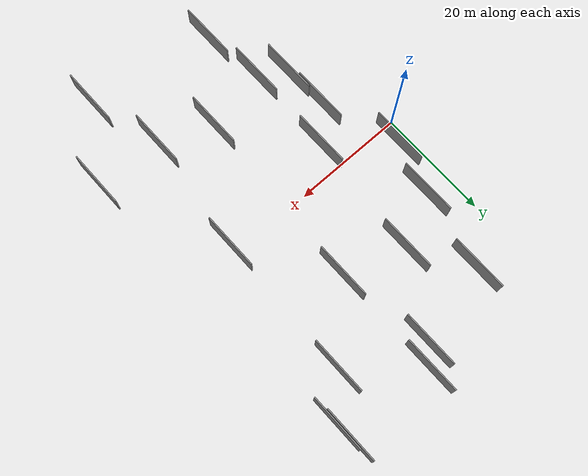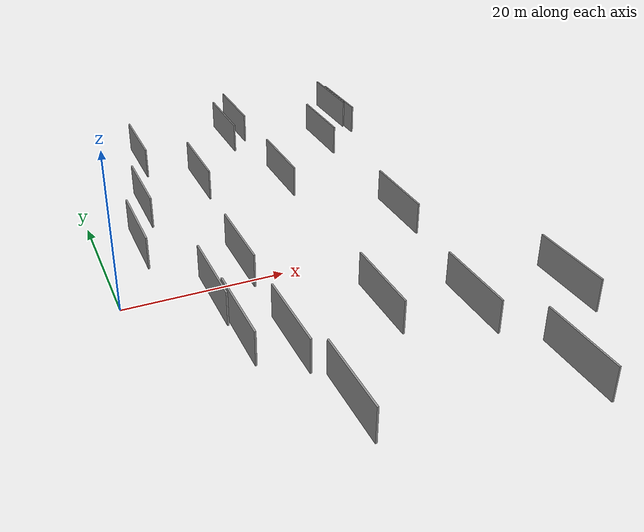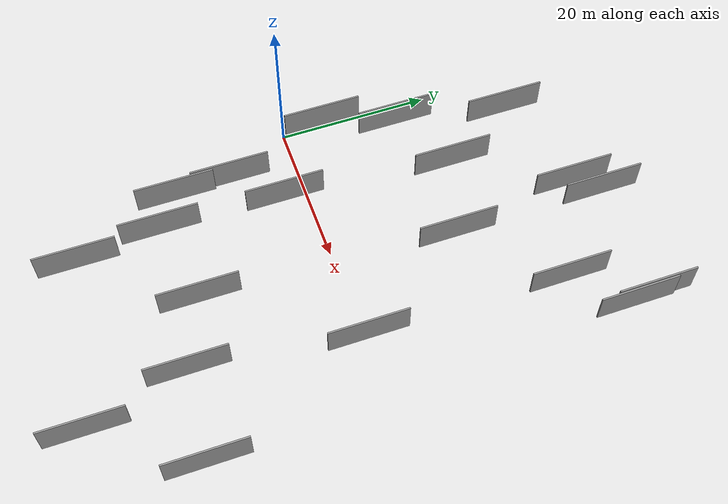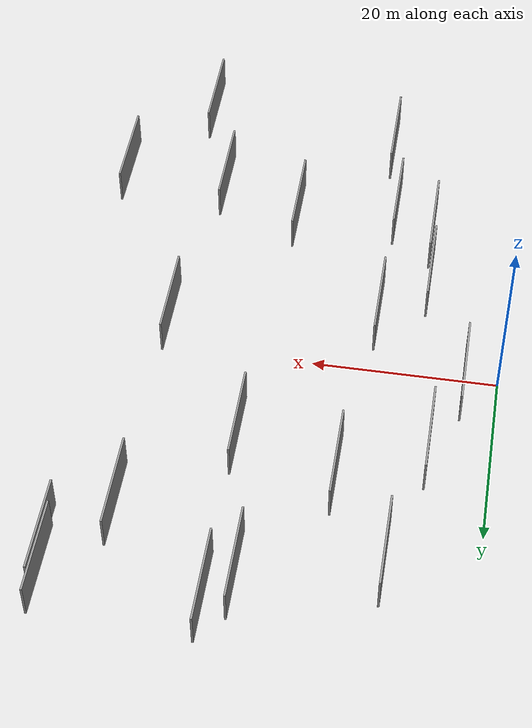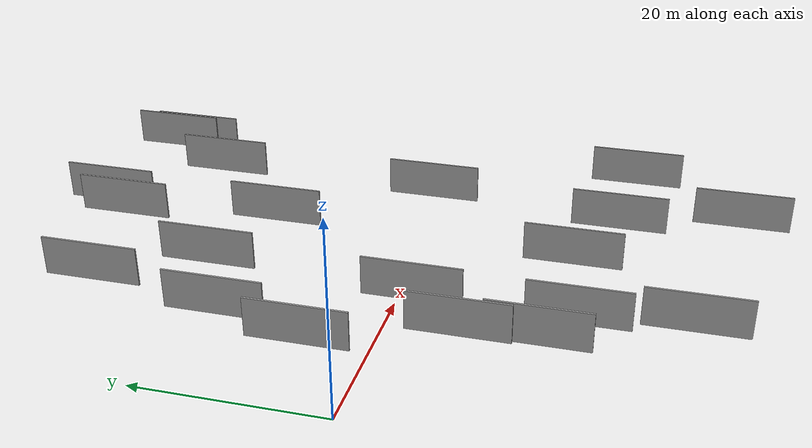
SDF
<sdf version="1.6">
 <world name="default">
  <scene>
   <sky><clouds><speed>12</speed></clouds></sky>
   <ambient>0.4 0.4 0.4 1</ambient>
   <background>0.7 0.7 0.7 1</background>
   <shadows>1</shadows>
  </scene>
  <gravity>0 0 -9.8066</gravity>
  <magnetic_field>6e-06 2.3e-05 -4.2e-05</magnetic_field>
  <physics default="0" name="default_physics" type="ode">
   <ode>
    <solver>
     <type>quick</type>
     <iters>10</iters>
     <sor>1.0</sor>
     <use_dynamic_moi_rescaling>0</use_dynamic_moi_rescaling>
    </solver>
    <constraints>
     <cfm>0</cfm>
     <erp>0.2</erp>
     <contact_max_correcting_vel>100</contact_max_correcting_vel>
     <contact_surface_layer>0.001</contact_surface_layer>
    </constraints>
   </ode>
   <max_step_size>0.004</max_step_size>
   <real_time_factor>1</real_time_factor>
   <real_time_update_rate>250</real_time_update_rate>
  </physics>
  <light name="sun" type="directional">
   <pose>0 0 10 0 0 0</pose>
   <diffuse>0.8 0.8 0.8 1</diffuse>
   <specular>0.2 0.2 0.2 1</specular>
   <attenuation>
    <range>1000</range>
    <constant>0.9</constant>
    <linear>0.01</linear>
    <quadratic>0.001</quadratic>
   </attenuation>
   <direction>-0.5 0.1 -0.9</direction>
  </light>
  <model name="grey_wall_1">
   <static>1</static>
   <pose>32.9535 -21.0607 5.0 0.000000 0.000000 1.570796</pose>
   <link name="link">
    <pose>0 0 2.00 0 0 0</pose>
    <collision name="collision"><geometry><box><size>10.00 0.2 4.00</size></box></geometry></collision>
    <visual name="visual">
     <cast_shadows>0</cast_shadows>
     <geometry><box><size>10.00 0.2 4.00</size></box></geometry>
     <material>
      <script>
       <uri>model://grey_wall/materials/scripts</uri>
       <uri>model://grey_wall/materials/textures</uri>
       <name>vrc/grey_wall</name>
      </script>
     </material>
    </visual>
   </link>
  </model>
  <model name="grey_wall_2">
   <static>1</static>
   <pose>8.8316 -16.3860 5.0 0.000000 0.000000 1.570796</pose>
   <link name="link">
    <pose>0 0 2.00 0 0 0</pose>
    <collision name="collision"><geometry><box><size>10.00 0.2 4.00</size></box></geometry></collision>
    <visual name="visual">
     <cast_shadows>0</cast_shadows>
     <geometry><box><size>10.00 0.2 4.00</size></box></geometry>
     <material>
      <script>
       <uri>model://grey_wall/materials/scripts</uri>
       <uri>model://grey_wall/materials/textures</uri>
       <name>vrc/grey_wall</name>
      </script>
     </material>
    </visual>
   </link>
  </model>
  <model name="grey_wall_3">
   <static>1</static>
   <pose>8.4490 -9.2028 5.0 0.000000 0.000000 1.570796</pose>
   <link name="link">
    <pose>0 0 2.00 0 0 0</pose>
    <collision name="collision"><geometry><box><size>10.00 0.2 4.00</size></box></geometry></collision>
    <visual name="visual">
     <cast_shadows>0</cast_shadows>
     <geometry><box><size>10.00 0.2 4.00</size></box></geometry>
     <material>
      <script>
       <uri>model://grey_wall/materials/scripts</uri>
       <uri>model://grey_wall/materials/textures</uri>
       <name>vrc/grey_wall</name>
      </script>
     </material>
    </visual>
   </link>
  </model>
  <model name="grey_wall_4">
   <static>1</static>
   <pose>44.4777 -21.8718 5.0 0.000000 0.000000 1.570796</pose>
   <link name="link">
    <pose>0 0 2.00 0 0 0</pose>
    <collision name="collision"><geometry><box><size>10.00 0.2 4.00</size></box></geometry></collision>
    <visual name="visual">
     <cast_shadows>0</cast_shadows>
     <geometry><box><size>10.00 0.2 4.00</size></box></geometry>
     <material>
      <script>
       <uri>model://grey_wall/materials/scripts</uri>
       <uri>model://grey_wall/materials/textures</uri>
       <name>vrc/grey_wall</name>
      </script>
     </material>
    </visual>
   </link>
  </model>
  <model name="grey_wall_5">
   <static>1</static>
   <pose>15.1462 18.0571 5.0 0.000000 0.000000 1.570796</pose>
   <link name="link">
    <pose>0 0 2.00 0 0 0</pose>
    <collision name="collision"><geometry><box><size>10.00 0.2 4.00</size></box></geometry></collision>
    <visual name="visual">
     <cast_shadows>0</cast_shadows>
     <geometry><box><size>10.00 0.2 4.00</size></box></geometry>
     <material>
      <script>
       <uri>model://grey_wall/materials/scripts</uri>
       <uri>model://grey_wall/materials/textures</uri>
       <name>vrc/grey_wall</name>
      </script>
     </material>
    </visual>
   </link>
  </model>
  <model name="grey_wall_6">
   <static>1</static>
   <pose>9.2437 27.6333 5.0 0.000000 0.000000 1.570796</pose>
   <link name="link">
    <pose>0 0 2.00 0 0 0</pose>
    <collision name="collision"><geometry><box><size>10.00 0.2 4.00</size></box></geometry></collision>
    <visual name="visual">
     <cast_shadows>0</cast_shadows>
     <geometry><box><size>10.00 0.2 4.00</size></box></geometry>
     <material>
      <script>
       <uri>model://grey_wall/materials/scripts</uri>
       <uri>model://grey_wall/materials/textures</uri>
       <name>vrc/grey_wall</name>
      </script>
     </material>
    </visual>
   </link>
  </model>
  <model name="grey_wall_7">
   <static>1</static>
   <pose>35.8995 24.8506 5.0 0.000000 0.000000 1.570796</pose>
   <link name="link">
    <pose>0 0 2.00 0 0 0</pose>
    <collision name="collision"><geometry><box><size>10.00 0.2 4.00</size></box></geometry></collision>
    <visual name="visual">
     <cast_shadows>0</cast_shadows>
     <geometry><box><size>10.00 0.2 4.00</size></box></geometry>
     <material>
      <script>
       <uri>model://grey_wall/materials/scripts</uri>
       <uri>model://grey_wall/materials/textures</uri>
       <name>vrc/grey_wall</name>
      </script>
     </material>
    </visual>
   </link>
  </model>
  <model name="grey_wall_8">
   <static>1</static>
   <pose>41.6824 30.8870 5.0 0.000000 0.000000 1.570796</pose>
   <link name="link">
    <pose>0 0 2.00 0 0 0</pose>
    <collision name="collision"><geometry><box><size>10.00 0.2 4.00</size></box></geometry></collision>
    <visual name="visual">
     <cast_shadows>0</cast_shadows>
     <geometry><box><size>10.00 0.2 4.00</size></box></geometry>
     <material>
      <script>
       <uri>model://grey_wall/materials/scripts</uri>
       <uri>model://grey_wall/materials/textures</uri>
       <name>vrc/grey_wall</name>
      </script>
     </material>
    </visual>
   </link>
  </model>
  <model name="grey_wall_9">
   <static>1</static>
   <pose>3.6715 4.4663 5.0 0.000000 0.000000 1.570796</pose>
   <link name="link">
    <pose>0 0 2.00 0 0 0</pose>
    <collision name="collision"><geometry><box><size>10.00 0.2 4.00</size></box></geometry></collision>
    <visual name="visual">
     <cast_shadows>0</cast_shadows>
     <geometry><box><size>10.00 0.2 4.00</size></box></geometry>
     <material>
      <script>
       <uri>model://grey_wall/materials/scripts</uri>
       <uri>model://grey_wall/materials/textures</uri>
       <name>vrc/grey_wall</name>
      </script>
     </material>
    </visual>
   </link>
  </model>
  <model name="grey_wall_10">
   <static>1</static>
   <pose>36.4802 -33.6578 5.0 0.000000 0.000000 1.570796</pose>
   <link name="link">
    <pose>0 0 2.00 0 0 0</pose>
    <collision name="collision"><geometry><box><size>10.00 0.2 4.00</size></box></geometry></collision>
    <visual name="visual">
     <cast_shadows>0</cast_shadows>
     <geometry><box><size>10.00 0.2 4.00</size></box></geometry>
     <material>
      <script>
       <uri>model://grey_wall/materials/scripts</uri>
       <uri>model://grey_wall/materials/textures</uri>
       <name>vrc/grey_wall</name>
      </script>
     </material>
    </visual>
   </link>
  </model>
  <model name="grey_wall_11">
   <static>1</static>
   <pose>13.4114 -3.5660 5.0 0.000000 0.000000 1.570796</pose>
   <link name="link">
    <pose>0 0 2.00 0 0 0</pose>
    <collision name="collision"><geometry><box><size>10.00 0.2 4.00</size></box></geometry></collision>
    <visual name="visual">
     <cast_shadows>0</cast_shadows>
     <geometry><box><size>10.00 0.2 4.00</size></box></geometry>
     <material>
      <script>
       <uri>model://grey_wall/materials/scripts</uri>
       <uri>model://grey_wall/materials/textures</uri>
       <name>vrc/grey_wall</name>
      </script>
     </material>
    </visual>
   </link>
  </model>
  <model name="grey_wall_12">
   <static>1</static>
   <pose>23.0033 31.1324 5.0 0.000000 0.000000 1.570796</pose>
   <link name="link">
    <pose>0 0 2.00 0 0 0</pose>
    <collision name="collision"><geometry><box><size>10.00 0.2 4.00</size></box></geometry></collision>
    <visual name="visual">
     <cast_shadows>0</cast_shadows>
     <geometry><box><size>10.00 0.2 4.00</size></box></geometry>
     <material>
      <script>
       <uri>model://grey_wall/materials/scripts</uri>
       <uri>model://grey_wall/materials/textures</uri>
       <name>vrc/grey_wall</name>
      </script>
     </material>
    </visual>
   </link>
  </model>
  <model name="grey_wall_13">
   <static>1</static>
   <pose>14.5856 -30.0116 5.0 0.000000 0.000000 1.570796</pose>
   <link name="link">
    <pose>0 0 2.00 0 0 0</pose>
    <collision name="collision"><geometry><box><size>10.00 0.2 4.00</size></box></geometry></collision>
    <visual name="visual">
     <cast_shadows>0</cast_shadows>
     <geometry><box><size>10.00 0.2 4.00</size></box></geometry>
     <material>
      <script>
       <uri>model://grey_wall/materials/scripts</uri>
       <uri>model://grey_wall/materials/textures</uri>
       <name>vrc/grey_wall</name>
      </script>
     </material>
    </visual>
   </link>
  </model>
  <model name="grey_wall_14">
   <static>1</static>
   <pose>13.1653 -19.4418 5.0 0.000000 0.000000 1.570796</pose>
   <link name="link">
    <pose>0 0 2.00 0 0 0</pose>
    <collision name="collision"><geometry><box><size>10.00 0.2 4.00</size></box></geometry></collision>
    <visual name="visual">
     <cast_shadows>0</cast_shadows>
     <geometry><box><size>10.00 0.2 4.00</size></box></geometry>
     <material>
      <script>
       <uri>model://grey_wall/materials/scripts</uri>
       <uri>model://grey_wall/materials/textures</uri>
       <name>vrc/grey_wall</name>
      </script>
     </material>
    </visual>
   </link>
  </model>
  <model name="grey_wall_15">
   <static>1</static>
   <pose>6.4201 13.6086 5.0 0.000000 0.000000 1.570796</pose>
   <link name="link">
    <pose>0 0 2.00 0 0 0</pose>
    <collision name="collision"><geometry><box><size>10.00 0.2 4.00</size></box></geometry></collision>
    <visual name="visual">
     <cast_shadows>0</cast_shadows>
     <geometry><box><size>10.00 0.2 4.00</size></box></geometry>
     <material>
      <script>
       <uri>model://grey_wall/materials/scripts</uri>
       <uri>model://grey_wall/materials/textures</uri>
       <name>vrc/grey_wall</name>
      </script>
     </material>
    </visual>
   </link>
  </model>
  <model name="grey_wall_16">
   <static>1</static>
   <pose>25.5684 14.7113 5.0 0.000000 0.000000 1.570796</pose>
   <link name="link">
    <pose>0 0 2.00 0 0 0</pose>
    <collision name="collision"><geometry><box><size>10.00 0.2 4.00</size></box></geometry></collision>
    <visual name="visual">
     <cast_shadows>0</cast_shadows>
     <geometry><box><size>10.00 0.2 4.00</size></box></geometry>
     <material>
      <script>
       <uri>model://grey_wall/materials/scripts</uri>
       <uri>model://grey_wall/materials/textures</uri>
       <name>vrc/grey_wall</name>
      </script>
     </material>
    </visual>
   </link>
  </model>
  <model name="grey_wall_17">
   <static>1</static>
   <pose>24.1335 -17.4057 5.0 0.000000 0.000000 1.570796</pose>
   <link name="link">
    <pose>0 0 2.00 0 0 0</pose>
    <collision name="collision"><geometry><box><size>10.00 0.2 4.00</size></box></geometry></collision>
    <visual name="visual">
     <cast_shadows>0</cast_shadows>
     <geometry><box><size>10.00 0.2 4.00</size></box></geometry>
     <material>
      <script>
       <uri>model://grey_wall/materials/scripts</uri>
       <uri>model://grey_wall/materials/textures</uri>
       <name>vrc/grey_wall</name>
      </script>
     </material>
    </visual>
   </link>
  </model>
  <model name="grey_wall_18">
   <static>1</static>
   <pose>25.5372 33.9854 5.0 0.000000 0.000000 1.570796</pose>
   <link name="link">
    <pose>0 0 2.00 0 0 0</pose>
    <collision name="collision"><geometry><box><size>10.00 0.2 4.00</size></box></geometry></collision>
    <visual name="visual">
     <cast_shadows>0</cast_shadows>
     <geometry><box><size>10.00 0.2 4.00</size></box></geometry>
     <material>
      <script>
       <uri>model://grey_wall/materials/scripts</uri>
       <uri>model://grey_wall/materials/textures</uri>
       <name>vrc/grey_wall</name>
      </script>
     </material>
    </visual>
   </link>
  </model>
  <model name="grey_wall_19">
   <static>1</static>
   <pose>35.3776 -0.2520 5.0 0.000000 0.000000 1.570796</pose>
   <link name="link">
    <pose>0 0 2.00 0 0 0</pose>
    <collision name="collision"><geometry><box><size>10.00 0.2 4.00</size></box></geometry></collision>
    <visual name="visual">
     <cast_shadows>0</cast_shadows>
     <geometry><box><size>10.00 0.2 4.00</size></box></geometry>
     <material>
      <script>
       <uri>model://grey_wall/materials/scripts</uri>
       <uri>model://grey_wall/materials/textures</uri>
       <name>vrc/grey_wall</name>
      </script>
     </material>
    </visual>
   </link>
  </model>
  <model name="grey_wall_20">
   <static>1</static>
   <pose>41.3711 33.3313 5.0 0.000000 0.000000 1.570796</pose>
   <link name="link">
    <pose>0 0 2.00 0 0 0</pose>
    <collision name="collision"><geometry><box><size>10.00 0.2 4.00</size></box></geometry></collision>
    <visual name="visual">
     <cast_shadows>0</cast_shadows>
     <geometry><box><size>10.00 0.2 4.00</size></box></geometry>
     <material>
      <script>
       <uri>model://grey_wall/materials/scripts</uri>
       <uri>model://grey_wall/materials/textures</uri>
       <name>vrc/grey_wall</name>
      </script>
     </material>
    </visual>
   </link>
  </model>
 </world>
</sdf>
